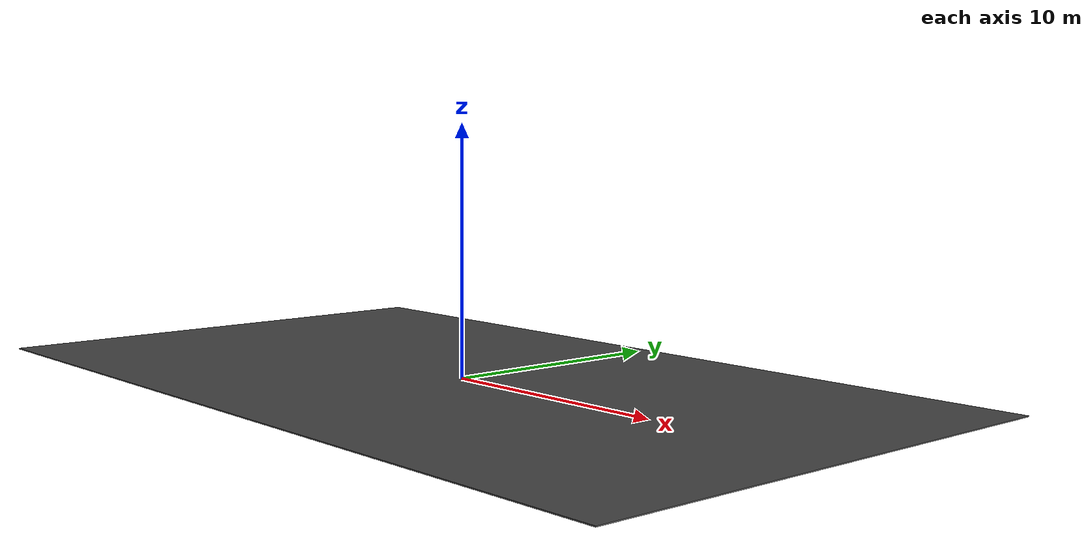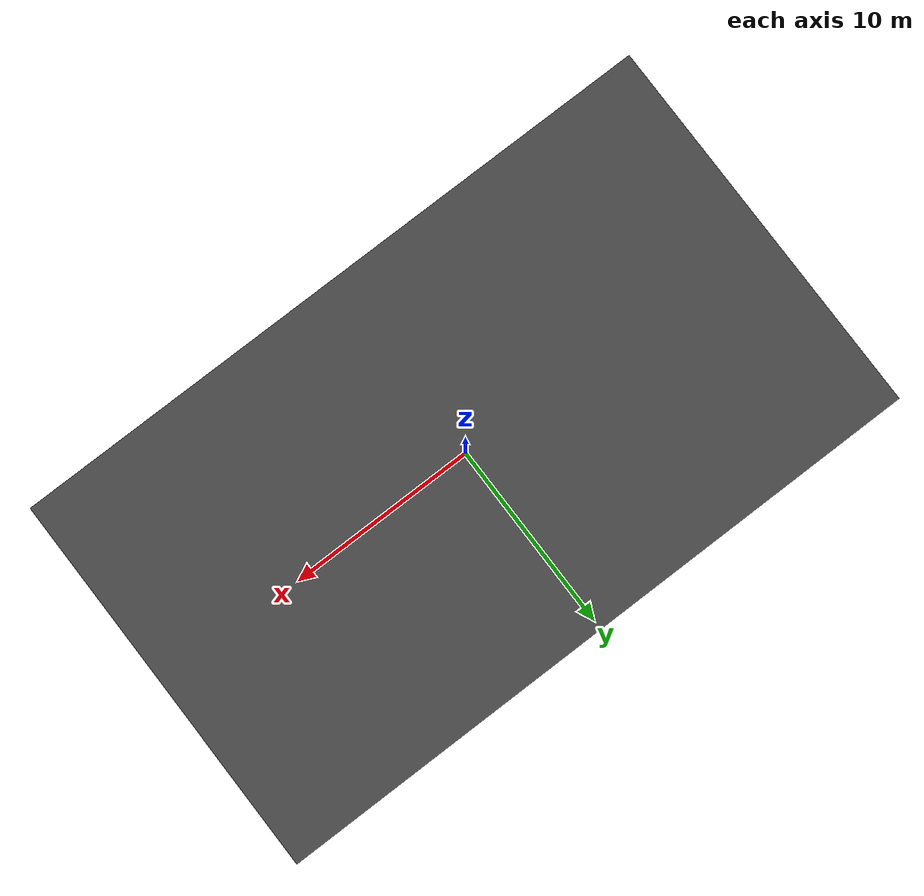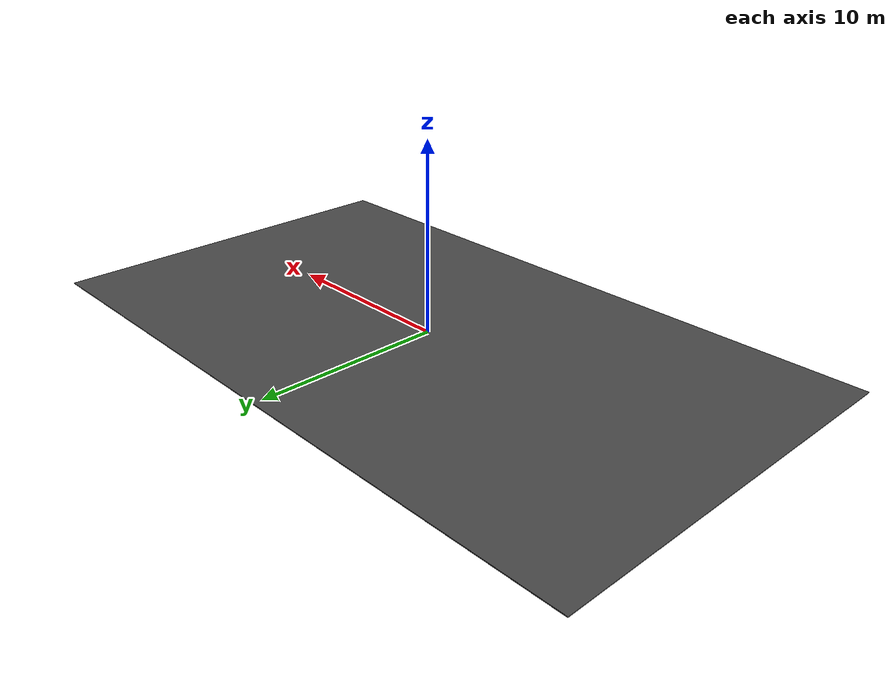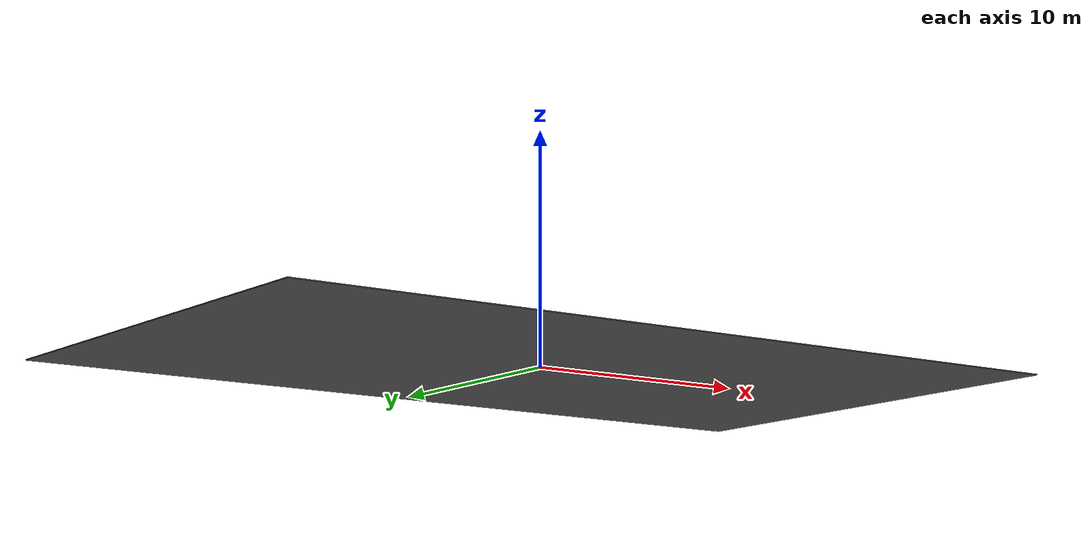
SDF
<?xml version="1.0" ?>
<sdf version="1.5">
  <model name="AIGC2_ground">
    <static>true</static>
    <link name="link">
      <collision name="collision">
        <geometry>
          <box>
            <size>36 21 .04</size>
          </box>
        </geometry>
      </collision>
      <visual name="visual">
        <cast_shadows>false</cast_shadows>
        <geometry>
          <box>
            <size>36 21 .04</size>
          </box>
        </geometry>
        <material>
          <script>
            <uri>model://AIGC2_ground/materials/scripts</uri>
            <uri>model://AIGC2_ground/materials/textures</uri>
            <name>vrc/asphalt</name>
          </script>
        </material>
      </visual>
    </link>
  </model>
</sdf>
